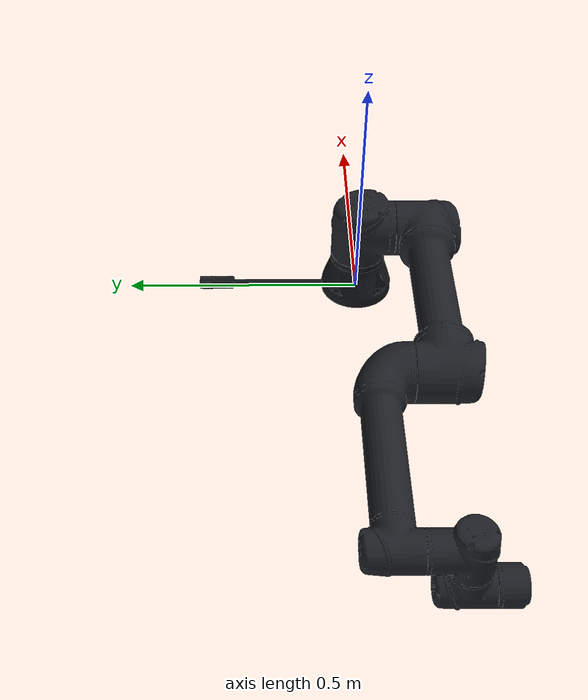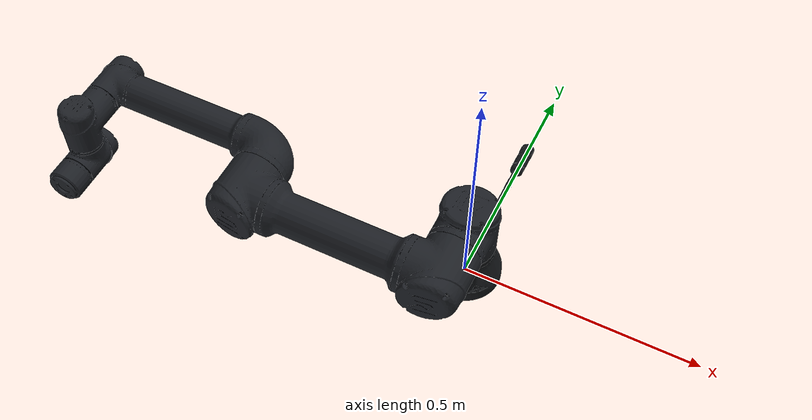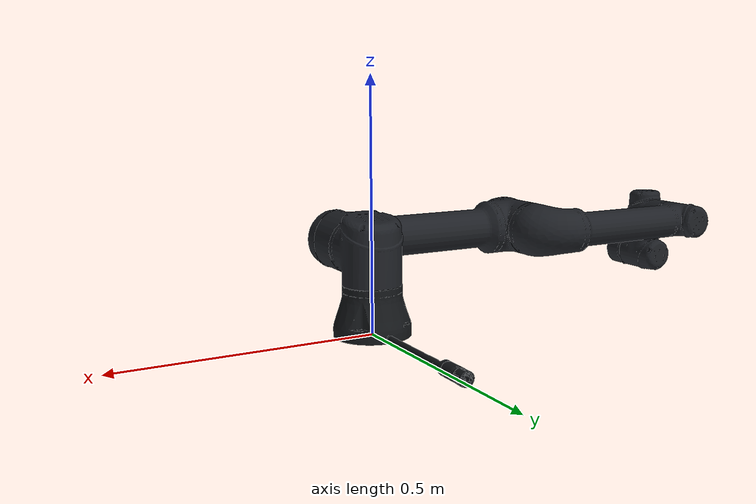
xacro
<?xml version="1.0"?>
<robot name="arm_sim" xmlns:xacro="http://www.ros.org/wiki/xacro">
  <xacro:arg name="ros2_control_plugin" default="mock_components/GenericSystem"/>
  <xacro:arg name="ros2_control_system_name" default="ArmFakeSystem"/>
  <xacro:arg name="use_gazebo" default="false"/>
  <xacro:arg name="gazebo_controller_config" default=""/>
  <xacro:arg name="visual_mode" default="cad"/>
  <xacro:arg name="collision_mode" default="simple"/>

  <xacro:property name="PI_CONST" value="3.1415926535897931"/>
  <xacro:property name="visual_mode" value="$(arg visual_mode)"/>
  <xacro:property name="collision_mode" value="$(arg collision_mode)"/>
  <xacro:property name="use_cad_visuals" value="${visual_mode == 'cad'}"/>

  <!-- UR7e kinematic dimensions from Universal Robots ur_description -->
  <xacro:property name="shoulder_z" value="0.1625"/>
  <xacro:property name="upper_arm_x" value="-0.425"/>
  <xacro:property name="forearm_x" value="-0.3922"/>
  <xacro:property name="forearm_z" value="0.1333"/>
  <xacro:property name="wrist_1_y" value="-0.0997"/>
  <xacro:property name="wrist_2_y" value="0.0996"/>

  <!-- Simplified collision / fallback visual dimensions -->
  <xacro:property name="base_radius" value="0.105"/>
  <xacro:property name="base_height" value="0.128"/>
  <xacro:property name="base_neck_radius" value="0.062"/>
  <xacro:property name="base_neck_height" value="${shoulder_z - base_height}"/>
  <xacro:property name="shoulder_hub_radius" value="0.070"/>
  <xacro:property name="shoulder_hub_length" value="0.120"/>
  <xacro:property name="shoulder_column_radius" value="0.050"/>
  <xacro:property name="shoulder_column_length" value="0.115"/>
  <xacro:property name="upper_arm_body_length" value="0.295"/>
  <xacro:property name="upper_arm_body_width" value="0.090"/>
  <xacro:property name="upper_arm_body_height" value="0.102"/>
  <xacro:property name="upper_arm_cap_radius" value="0.053"/>
  <xacro:property name="forearm_body_length" value="0.302"/>
  <xacro:property name="forearm_body_width" value="0.082"/>
  <xacro:property name="forearm_body_height" value="0.094"/>
  <xacro:property name="forearm_cap_radius" value="0.048"/>
  <xacro:property name="forearm_visual_length" value="0.4142339073518729"/>
  <xacro:property name="forearm_visual_pitch" value="-2.813963855577728"/>
  <xacro:property name="wrist_radius" value="0.040"/>
  <xacro:property name="wrist_1_length" value="0.0997"/>
  <xacro:property name="wrist_2_length" value="0.0996"/>
  <xacro:property name="wrist_3_radius" value="0.034"/>
  <xacro:property name="flange_radius" value="0.032"/>
  <xacro:property name="flange_thickness" value="0.018"/>
  <xacro:property name="tool_radius" value="0.020"/>
  <xacro:property name="tool_length" value="0.060"/>
  <xacro:property name="accent_ring_radius_large" value="0.061"/>
  <xacro:property name="accent_ring_radius_medium" value="0.049"/>
  <xacro:property name="accent_ring_radius_small" value="0.035"/>
  <xacro:property name="accent_ring_length" value="0.010"/>

  <xacro:property name="joint_1_lower" value="${-2.0 * PI_CONST}"/>
  <xacro:property name="joint_1_upper" value="${2.0 * PI_CONST}"/>
  <xacro:property name="joint_2_lower" value="${-2.0 * PI_CONST}"/>
  <xacro:property name="joint_2_upper" value="${2.0 * PI_CONST}"/>
  <xacro:property name="joint_3_lower" value="${-PI_CONST}"/>
  <xacro:property name="joint_3_upper" value="${PI_CONST}"/>
  <xacro:property name="joint_4_lower" value="${-2.0 * PI_CONST}"/>
  <xacro:property name="joint_4_upper" value="${2.0 * PI_CONST}"/>
  <xacro:property name="joint_5_lower" value="${-2.0 * PI_CONST}"/>
  <xacro:property name="joint_5_upper" value="${2.0 * PI_CONST}"/>
  <xacro:property name="joint_6_lower" value="${-2.0 * PI_CONST}"/>
  <xacro:property name="joint_6_upper" value="${2.0 * PI_CONST}"/>
  <xacro:property name="joint_velocity_limit" value="${PI_CONST}"/>

  <xacro:property name="large_joint_damping" value="0.22"/>
  <xacro:property name="large_joint_friction" value="0.06"/>
  <xacro:property name="wrist_joint_damping" value="0.08"/>
  <xacro:property name="wrist_joint_friction" value="0.02"/>

  <xacro:property name="cad_mesh_root" value="package://arm_description/meshes/ur7e/local"/>
  <xacro:property name="cad_mesh_scale" value="1 1 1"/>

  <xacro:macro name="box_inertial" params="mass x y z origin_x:=0.0 origin_y:=0.0 origin_z:=0.0">
    <inertial>
      <mass value="${mass}"/>
      <origin xyz="${origin_x} ${origin_y} ${origin_z}" rpy="0 0 0"/>
      <inertia ixx="${mass * (y * y + z * z) / 12.0}"
               ixy="0.0"
               ixz="0.0"
               iyy="${mass * (x * x + z * z) / 12.0}"
               iyz="0.0"
               izz="${mass * (x * x + y * y) / 12.0}"/>
    </inertial>
  </xacro:macro>

  <xacro:macro name="cylinder_inertial" params="mass radius length origin_x:=0.0 origin_y:=0.0 origin_z:=0.0 rpy:='0 0 0'">
    <inertial>
      <mass value="${mass}"/>
      <origin xyz="${origin_x} ${origin_y} ${origin_z}" rpy="${rpy}"/>
      <inertia ixx="${mass * (3.0 * radius * radius + length * length) / 12.0}"
               ixy="0.0"
               ixz="0.0"
               iyy="${mass * (3.0 * radius * radius + length * length) / 12.0}"
               iyz="0.0"
               izz="${0.5 * mass * radius * radius}"/>
    </inertial>
  </xacro:macro>

  <xacro:macro name="mesh_visual" params="mesh_name material_name origin_xyz:='0 0 0' origin_rpy:='0 0 0' scale:=${cad_mesh_scale}">
    <visual>
      <origin xyz="${origin_xyz}" rpy="${origin_rpy}"/>
      <geometry>
        <mesh filename="${cad_mesh_root}/${mesh_name}" scale="${scale}"/>
      </geometry>
      <material name="${material_name}"/>
    </visual>
  </xacro:macro>

  <material name="ur_dark">
    <color rgba="0.12 0.13 0.15 1.0"/>
  </material>

  <material name="ur_black">
    <color rgba="0.08 0.09 0.10 1.0"/>
  </material>

  <material name="ur_metal">
    <color rgba="0.80 0.82 0.84 1.0"/>
  </material>

  <material name="ur_blue">
    <color rgba="0.13 0.73 0.92 1.0"/>
  </material>

  <link name="base_footprint"/>

  <link name="base_link">
    <xacro:if value="${use_cad_visuals}">
      <xacro:mesh_visual mesh_name="base_link.stl" material_name="ur_black"/>
    </xacro:if>
    <xacro:unless value="${use_cad_visuals}">
      <visual>
        <geometry>
          <cylinder radius="${base_radius}" length="${base_height}"/>
        </geometry>
        <origin xyz="0 0 ${base_height / 2.0}" rpy="0 0 0"/>
        <material name="ur_black"/>
      </visual>
      <visual>
        <geometry>
          <cylinder radius="${base_neck_radius}" length="${base_neck_height}"/>
        </geometry>
        <origin xyz="0 0 ${base_height + (base_neck_height / 2.0)}" rpy="0 0 0"/>
        <material name="ur_dark"/>
      </visual>
    </xacro:unless>
    <collision>
      <geometry>
        <cylinder radius="${base_radius}" length="${shoulder_z}"/>
      </geometry>
      <origin xyz="0 0 ${shoulder_z / 2.0}" rpy="0 0 0"/>
    </collision>
    <xacro:cylinder_inertial mass="4.0" radius="${base_radius}" length="${shoulder_z}" origin_z="${shoulder_z / 2.0}"/>
  </link>

  <link name="link_1">
    <xacro:if value="${use_cad_visuals}">
      <xacro:mesh_visual mesh_name="link_1.stl" material_name="ur_dark"/>
    </xacro:if>
    <xacro:unless value="${use_cad_visuals}">
      <visual>
        <geometry>
          <cylinder radius="${shoulder_column_radius}" length="${shoulder_column_length}"/>
        </geometry>
        <origin xyz="0 0 ${-shoulder_column_length / 2.0}" rpy="0 0 0"/>
        <material name="ur_dark"/>
      </visual>
      <visual>
        <geometry>
          <cylinder radius="${shoulder_hub_radius}" length="${shoulder_hub_length}"/>
        </geometry>
        <origin xyz="0 0 0" rpy="1.57079632679 0 0"/>
        <material name="ur_dark"/>
      </visual>
    </xacro:unless>
    <collision>
      <geometry>
        <cylinder radius="${shoulder_hub_radius}" length="${shoulder_hub_length}"/>
      </geometry>
      <origin xyz="0 0 0" rpy="1.57079632679 0 0"/>
    </collision>
    <xacro:cylinder_inertial mass="3.761" radius="${shoulder_hub_radius}" length="${shoulder_hub_length}" rpy="1.57079632679 0 0"/>
  </link>

  <link name="link_2">
    <xacro:if value="${use_cad_visuals}">
      <xacro:mesh_visual mesh_name="link_2.stl" material_name="ur_dark"/>
    </xacro:if>
    <xacro:unless value="${use_cad_visuals}">
      <visual>
        <geometry>
          <box size="${upper_arm_body_length} ${upper_arm_body_width} ${upper_arm_body_height}"/>
        </geometry>
        <origin xyz="${upper_arm_x / 2.0} 0 0" rpy="0 0 0"/>
        <material name="ur_dark"/>
      </visual>
      <visual>
        <geometry>
          <cylinder radius="${upper_arm_cap_radius}" length="${upper_arm_body_width + 0.018}"/>
        </geometry>
        <origin xyz="0 0 0" rpy="1.57079632679 0 0"/>
        <material name="ur_dark"/>
      </visual>
      <visual>
        <geometry>
          <cylinder radius="${upper_arm_cap_radius}" length="${upper_arm_body_width + 0.014}"/>
        </geometry>
        <origin xyz="${upper_arm_x} 0 0" rpy="1.57079632679 0 0"/>
        <material name="ur_dark"/>
      </visual>
    </xacro:unless>
    <collision>
      <geometry>
        <box size="${-upper_arm_x} 0.085 0.095"/>
      </geometry>
      <origin xyz="${upper_arm_x / 2.0} 0 0" rpy="0 0 0"/>
    </collision>
    <xacro:box_inertial mass="8.058" x="${-upper_arm_x}" y="0.085" z="0.095" origin_x="${upper_arm_x / 2.0}"/>
  </link>

  <link name="link_3">
    <xacro:if value="${use_cad_visuals}">
      <xacro:mesh_visual mesh_name="link_3.stl" material_name="ur_dark"/>
    </xacro:if>
    <xacro:unless value="${use_cad_visuals}">
      <visual>
        <geometry>
          <box size="${forearm_body_length} ${forearm_body_width} ${forearm_body_height}"/>
        </geometry>
        <origin xyz="${forearm_x / 2.0} 0 ${forearm_z / 2.0}" rpy="0 ${forearm_visual_pitch} 0"/>
        <material name="ur_dark"/>
      </visual>
      <visual>
        <geometry>
          <cylinder radius="${forearm_cap_radius}" length="${forearm_body_width + 0.016}"/>
        </geometry>
        <origin xyz="0 0 0" rpy="1.57079632679 0 0"/>
        <material name="ur_dark"/>
      </visual>
      <visual>
        <geometry>
          <cylinder radius="${forearm_cap_radius}" length="${forearm_body_width + 0.012}"/>
        </geometry>
        <origin xyz="${forearm_x} 0 ${forearm_z}" rpy="1.57079632679 0 0"/>
        <material name="ur_dark"/>
      </visual>
    </xacro:unless>
    <collision>
      <geometry>
        <box size="${forearm_visual_length} 0.078 0.088"/>
      </geometry>
      <origin xyz="${forearm_x / 2.0} 0 ${forearm_z / 2.0}" rpy="0 ${forearm_visual_pitch} 0"/>
    </collision>
    <xacro:box_inertial mass="2.846" x="${forearm_visual_length}" y="0.078" z="0.088" origin_x="${forearm_x / 2.0}" origin_z="${forearm_z / 2.0}"/>
  </link>

  <link name="link_4">
    <xacro:if value="${use_cad_visuals}">
      <xacro:mesh_visual mesh_name="link_4.stl" material_name="ur_dark"/>
    </xacro:if>
    <xacro:unless value="${use_cad_visuals}">
      <visual>
        <geometry>
          <sphere radius="${wrist_radius + 0.010}"/>
        </geometry>
        <origin xyz="0 0 0" rpy="0 0 0"/>
        <material name="ur_dark"/>
      </visual>
      <visual>
        <geometry>
          <cylinder radius="${wrist_radius}" length="${wrist_1_length + 0.016}"/>
        </geometry>
        <origin xyz="0 ${wrist_1_y / 2.0} 0" rpy="1.57079632679 0 0"/>
        <material name="ur_dark"/>
      </visual>
    </xacro:unless>
    <collision>
      <geometry>
        <cylinder radius="${wrist_radius}" length="${wrist_1_length}"/>
      </geometry>
      <origin xyz="0 ${wrist_1_y / 2.0} 0" rpy="1.57079632679 0 0"/>
    </collision>
    <xacro:cylinder_inertial mass="1.37" radius="${wrist_radius}" length="${wrist_1_length}" origin_y="${wrist_1_y / 2.0}" rpy="1.57079632679 0 0"/>
  </link>

  <link name="link_5">
    <xacro:if value="${use_cad_visuals}">
      <xacro:mesh_visual mesh_name="link_5.stl" material_name="ur_dark"/>
    </xacro:if>
    <xacro:unless value="${use_cad_visuals}">
      <visual>
        <geometry>
          <sphere radius="${wrist_radius + 0.008}"/>
        </geometry>
        <origin xyz="0 0 0" rpy="0 0 0"/>
        <material name="ur_dark"/>
      </visual>
      <visual>
        <geometry>
          <cylinder radius="${wrist_radius}" length="${wrist_2_length + 0.016}"/>
        </geometry>
        <origin xyz="0 ${wrist_2_y / 2.0} 0" rpy="1.57079632679 0 0"/>
        <material name="ur_dark"/>
      </visual>
    </xacro:unless>
    <collision>
      <geometry>
        <cylinder radius="${wrist_radius}" length="${wrist_2_length}"/>
      </geometry>
      <origin xyz="0 ${wrist_2_y / 2.0} 0" rpy="1.57079632679 0 0"/>
    </collision>
    <xacro:cylinder_inertial mass="1.3" radius="${wrist_radius}" length="${wrist_2_length}" origin_y="${wrist_2_y / 2.0}" rpy="1.57079632679 0 0"/>
  </link>

  <link name="link_6">
    <xacro:if value="${use_cad_visuals}">
      <xacro:mesh_visual mesh_name="link_6.stl" material_name="ur_dark"/>
    </xacro:if>
    <xacro:unless value="${use_cad_visuals}">
      <visual>
        <geometry>
          <sphere radius="${wrist_3_radius + 0.008}"/>
        </geometry>
        <origin xyz="0 0 0" rpy="0 0 0"/>
        <material name="ur_dark"/>
      </visual>
      <visual>
        <geometry>
          <cylinder radius="${wrist_3_radius}" length="0.072"/>
        </geometry>
        <origin xyz="0 0 0" rpy="0 0 0"/>
        <material name="ur_dark"/>
      </visual>
    </xacro:unless>
    <collision>
      <geometry>
        <cylinder radius="${wrist_3_radius}" length="0.080"/>
      </geometry>
      <origin xyz="0 0 0" rpy="0 0 0"/>
    </collision>
    <xacro:cylinder_inertial mass="0.365" radius="${wrist_3_radius}" length="0.080"/>
  </link>

  <link name="flange">
    <xacro:unless value="${use_cad_visuals}">
      <visual>
        <geometry>
          <cylinder radius="${flange_radius + 0.004}" length="${flange_thickness + 0.010}"/>
        </geometry>
        <origin xyz="0 0 ${(flange_thickness + 0.010) / 2.0}" rpy="0 0 0"/>
        <material name="ur_metal"/>
      </visual>
    </xacro:unless>
    <collision>
      <geometry>
        <cylinder radius="${flange_radius}" length="${flange_thickness}"/>
      </geometry>
      <origin xyz="0 0 ${flange_thickness / 2.0}" rpy="0 0 0"/>
    </collision>
    <xacro:cylinder_inertial mass="0.20" radius="${flange_radius}" length="${flange_thickness}" origin_z="${flange_thickness / 2.0}"/>
  </link>

  <link name="tool0">
    <xacro:cylinder_inertial mass="0.15" radius="${tool_radius}" length="${tool_length}" origin_z="${tool_length / 2.0}"/>
  </link>

  <link name="tcp"/>

  <joint name="base_footprint_to_base_link" type="fixed">
    <parent link="base_footprint"/>
    <child link="base_link"/>
    <origin xyz="0 0 0" rpy="0 0 0"/>
  </joint>

  <joint name="joint_1" type="revolute">
    <parent link="base_link"/>
    <child link="link_1"/>
    <origin xyz="0 0 ${shoulder_z}" rpy="0 0 0"/>
    <axis xyz="0 0 1"/>
    <limit lower="${joint_1_lower}" upper="${joint_1_upper}" effort="150.0" velocity="${joint_velocity_limit}"/>
    <dynamics damping="${large_joint_damping}" friction="${large_joint_friction}"/>
  </joint>

  <joint name="joint_2" type="revolute">
    <parent link="link_1"/>
    <child link="link_2"/>
    <origin xyz="0 0 0" rpy="1.570796327 0 0"/>
    <axis xyz="0 0 1"/>
    <limit lower="${joint_2_lower}" upper="${joint_2_upper}" effort="150.0" velocity="${joint_velocity_limit}"/>
    <dynamics damping="${large_joint_damping}" friction="${large_joint_friction}"/>
  </joint>

  <joint name="joint_3" type="revolute">
    <parent link="link_2"/>
    <child link="link_3"/>
    <origin xyz="${upper_arm_x} 0 0" rpy="0 0 0"/>
    <axis xyz="0 0 1"/>
    <limit lower="${joint_3_lower}" upper="${joint_3_upper}" effort="150.0" velocity="${joint_velocity_limit}"/>
    <dynamics damping="${large_joint_damping}" friction="${large_joint_friction}"/>
  </joint>

  <joint name="joint_4" type="revolute">
    <parent link="link_3"/>
    <child link="link_4"/>
    <origin xyz="${forearm_x} 0 ${forearm_z}" rpy="0 0 0"/>
    <axis xyz="0 0 1"/>
    <limit lower="${joint_4_lower}" upper="${joint_4_upper}" effort="28.0" velocity="${joint_velocity_limit}"/>
    <dynamics damping="${wrist_joint_damping}" friction="${wrist_joint_friction}"/>
  </joint>

  <joint name="joint_5" type="revolute">
    <parent link="link_4"/>
    <child link="link_5"/>
    <origin xyz="0 ${wrist_1_y} 0" rpy="1.570796327 0 0"/>
    <axis xyz="0 0 1"/>
    <limit lower="${joint_5_lower}" upper="${joint_5_upper}" effort="28.0" velocity="${joint_velocity_limit}"/>
    <dynamics damping="${wrist_joint_damping}" friction="${wrist_joint_friction}"/>
  </joint>

  <joint name="joint_6" type="revolute">
    <parent link="link_5"/>
    <child link="link_6"/>
    <origin xyz="0 ${wrist_2_y} 0" rpy="1.57079632659 ${PI_CONST} ${PI_CONST}"/>
    <axis xyz="0 0 1"/>
    <limit lower="${joint_6_lower}" upper="${joint_6_upper}" effort="28.0" velocity="${joint_velocity_limit}"/>
    <dynamics damping="${wrist_joint_damping}" friction="${wrist_joint_friction}"/>
  </joint>

  <joint name="link_6_to_flange" type="fixed">
    <parent link="link_6"/>
    <child link="flange"/>
    <origin xyz="0 0 0" rpy="0 ${-PI_CONST / 2.0} ${-PI_CONST / 2.0}"/>
  </joint>

  <joint name="tool0_fixed_joint" type="fixed">
    <parent link="flange"/>
    <child link="tool0"/>
    <origin xyz="0 0 ${flange_thickness}" rpy="${PI_CONST / 2.0} 0 ${PI_CONST / 2.0}"/>
  </joint>

  <joint name="tool0_to_tcp" type="fixed">
    <parent link="tool0"/>
    <child link="tcp"/>
    <origin xyz="0 0 ${tool_length}" rpy="0 0 0"/>
  </joint>

  <xacro:if value="$(arg use_gazebo)">
    <gazebo>
      <plugin filename="libgazebo_ros2_control.so" name="gazebo_ros2_control">
        <parameters>$(arg gazebo_controller_config)</parameters>
      </plugin>
    </gazebo>
  </xacro:if>

  <ros2_control name="$(arg ros2_control_system_name)" type="system">
    <hardware>
      <plugin>$(arg ros2_control_plugin)</plugin>
    </hardware>

    <joint name="joint_1">
      <command_interface name="position"/>
      <state_interface name="position"/>
      <state_interface name="velocity"/>
    </joint>
    <joint name="joint_2">
      <command_interface name="position"/>
      <state_interface name="position"/>
      <state_interface name="velocity"/>
    </joint>
    <joint name="joint_3">
      <command_interface name="position"/>
      <state_interface name="position"/>
      <state_interface name="velocity"/>
    </joint>
    <joint name="joint_4">
      <command_interface name="position"/>
      <state_interface name="position"/>
      <state_interface name="velocity"/>
    </joint>
    <joint name="joint_5">
      <command_interface name="position"/>
      <state_interface name="position"/>
      <state_interface name="velocity"/>
    </joint>
    <joint name="joint_6">
      <command_interface name="position"/>
      <state_interface name="position"/>
      <state_interface name="velocity"/>
    </joint>
  </ros2_control>
</robot>
